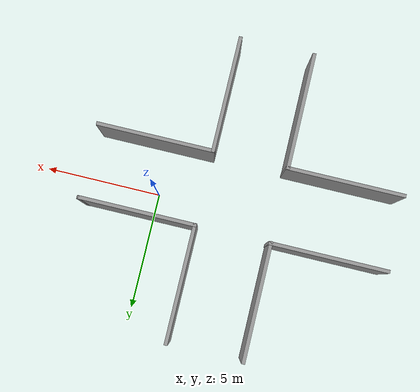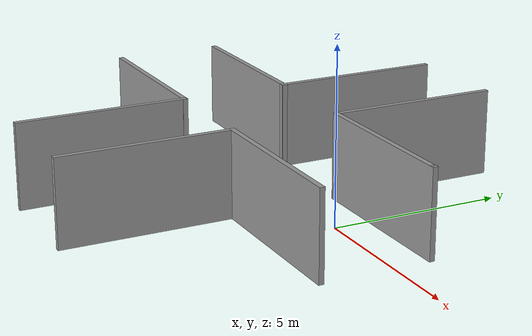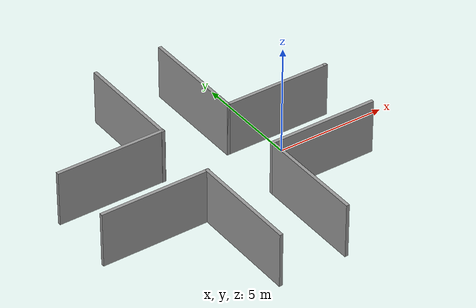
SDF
<?xml version='1.0'?>
<sdf version='1.7'>
  <model name='kavsak'>
    <pose>-3.48 -0.495 0 0 -0 0</pose>
    <link name='Wall_0'>
      <collision name='Wall_0_Collision'>
        <geometry>
          <box>
            <size>5 0.15 2.5</size>
          </box>
        </geometry>
        <pose>0 0 1.25 0 -0 0</pose>
      </collision>
      <visual name='Wall_0_Visual'>
        <pose>0 0 1.25 0 -0 0</pose>
        <geometry>
          <box>
            <size>5 0.15 2.5</size>
          </box>
        </geometry>
        <material>
          <script>
            <uri>file://media/materials/scripts/gazebo.material</uri>
            <name>Gazebo/Grey</name>
          </script>
          <ambient>1 1 1 1</ambient>
        </material>
        <meta>
          <layer>0</layer>
        </meta>
      </visual>
      <pose>-3.995 1.585 0 0 -0 0</pose>
    </link>
    <link name='Wall_12'>
      <collision name='Wall_12_Collision'>
        <geometry>
          <box>
            <size>5 0.15 2.5</size>
          </box>
        </geometry>
        <pose>0 0 1.25 0 -0 0</pose>
      </collision>
      <visual name='Wall_12_Visual'>
        <pose>0 0 1.25 0 -0 0</pose>
        <geometry>
          <box>
            <size>5 0.15 2.5</size>
          </box>
        </geometry>
        <material>
          <script>
            <uri>file://media/materials/scripts/gazebo.material</uri>
            <name>Gazebo/Grey</name>
          </script>
          <ambient>1 1 1 1</ambient>
        </material>
        <meta>
          <layer>0</layer>
        </meta>
      </visual>
      <pose>3.985 -1.545 0 0 -0 0</pose>
    </link>
    <link name='Wall_15'>
      <collision name='Wall_15_Collision'>
        <geometry>
          <box>
            <size>5 0.15 2.5</size>
          </box>
        </geometry>
        <pose>0 0 1.25 0 -0 0</pose>
      </collision>
      <visual name='Wall_15_Visual'>
        <pose>0 0 1.25 0 -0 0</pose>
        <geometry>
          <box>
            <size>5 0.15 2.5</size>
          </box>
        </geometry>
        <material>
          <script>
            <uri>file://media/materials/scripts/gazebo.material</uri>
            <name>Gazebo/Grey</name>
          </script>
          <ambient>1 1 1 1</ambient>
        </material>
        <meta>
          <layer>0</layer>
        </meta>
      </visual>
      <pose>1.56 -3.99 0 0 -0 -1.5708</pose>
    </link>
    <link name='Wall_17'>
      <collision name='Wall_17_Collision'>
        <geometry>
          <box>
            <size>5 0.15 2.5</size>
          </box>
        </geometry>
        <pose>0 0 1.25 0 -0 0</pose>
      </collision>
      <visual name='Wall_17_Visual'>
        <pose>0 0 1.25 0 -0 0</pose>
        <geometry>
          <box>
            <size>5 0.15 2.5</size>
          </box>
        </geometry>
        <material>
          <script>
            <uri>file://media/materials/scripts/gazebo.material</uri>
            <name>Gazebo/Grey</name>
          </script>
          <ambient>1 1 1 1</ambient>
        </material>
        <meta>
          <layer>0</layer>
        </meta>
      </visual>
      <pose>3.995 1.585 0 0 -0 0</pose>
    </link>
    <link name='Wall_18'>
      <collision name='Wall_18_Collision'>
        <geometry>
          <box>
            <size>0.15 0.15 2.5</size>
          </box>
        </geometry>
        <pose>0 0 1.25 0 -0 0</pose>
      </collision>
      <visual name='Wall_18_Visual'>
        <pose>0 0 1.25 0 -0 0</pose>
        <geometry>
          <box>
            <size>0.15 0.15 2.5</size>
          </box>
        </geometry>
        <material>
          <script>
            <uri>file://media/materials/scripts/gazebo.material</uri>
            <name>Gazebo/Grey</name>
          </script>
          <ambient>1 1 1 1</ambient>
        </material>
        <meta>
          <layer>0</layer>
        </meta>
      </visual>
      <pose>6.4 1.595 0 0 -0 0</pose>
    </link>
    <link name='Wall_2'>
      <collision name='Wall_2_Collision'>
        <geometry>
          <box>
            <size>5 0.15 2.5</size>
          </box>
        </geometry>
        <pose>0 0 1.25 0 -0 0</pose>
      </collision>
      <visual name='Wall_2_Visual'>
        <pose>0 0 1.25 0 -0 0</pose>
        <geometry>
          <box>
            <size>5 0.15 2.5</size>
          </box>
        </geometry>
        <material>
          <script>
            <uri>file://media/materials/scripts/gazebo.material</uri>
            <name>Gazebo/Grey</name>
          </script>
          <ambient>1 1 1 1</ambient>
        </material>
        <meta>
          <layer>0</layer>
        </meta>
      </visual>
      <pose>-3.995 -1.565 0 0 -0 0</pose>
    </link>
    <link name='Wall_20'>
      <collision name='Wall_20_Collision'>
        <geometry>
          <box>
            <size>5 0.15 2.5</size>
          </box>
        </geometry>
        <pose>0 0 1.25 0 -0 0</pose>
      </collision>
      <visual name='Wall_20_Visual'>
        <pose>0 0 1.25 0 -0 0</pose>
        <geometry>
          <box>
            <size>5 0.15 2.5</size>
          </box>
        </geometry>
        <material>
          <script>
            <uri>file://media/materials/scripts/gazebo.material</uri>
            <name>Gazebo/Grey</name>
          </script>
          <ambient>1 1 1 1</ambient>
        </material>
        <meta>
          <layer>0</layer>
        </meta>
      </visual>
      <pose>-1.59 4 0 0 -0 -1.5708</pose>
    </link>
    <link name='Wall_22'>
      <collision name='Wall_22_Collision'>
        <geometry>
          <box>
            <size>5 0.15 2.5</size>
          </box>
        </geometry>
        <pose>0 0 1.25 0 -0 0</pose>
      </collision>
      <visual name='Wall_22_Visual'>
        <pose>0 0 1.25 0 -0 0</pose>
        <geometry>
          <box>
            <size>5 0.15 2.5</size>
          </box>
        </geometry>
        <material>
          <script>
            <uri>file://media/materials/scripts/gazebo.material</uri>
            <name>Gazebo/Grey</name>
          </script>
          <ambient>1 1 1 1</ambient>
        </material>
        <meta>
          <layer>0</layer>
        </meta>
      </visual>
      <pose>1.57 4.01 0 0 -0 -1.5708</pose>
    </link>
    <link name='Wall_4'>
      <collision name='Wall_4_Collision'>
        <geometry>
          <box>
            <size>5 0.15 2.5</size>
          </box>
        </geometry>
        <pose>0 0 1.25 0 -0 0</pose>
      </collision>
      <visual name='Wall_4_Visual'>
        <pose>0 0 1.25 0 -0 0</pose>
        <geometry>
          <box>
            <size>5 0.15 2.5</size>
          </box>
        </geometry>
        <material>
          <script>
            <uri>file://media/materials/scripts/gazebo.material</uri>
            <name>Gazebo/Grey</name>
          </script>
          <ambient>1 1 1 1</ambient>
        </material>
        <meta>
          <layer>0</layer>
        </meta>
      </visual>
      <pose>-1.58 -4.01 0 0 -0 -1.5708</pose>
    </link>
    <static>1</static>
  </model>
</sdf>
